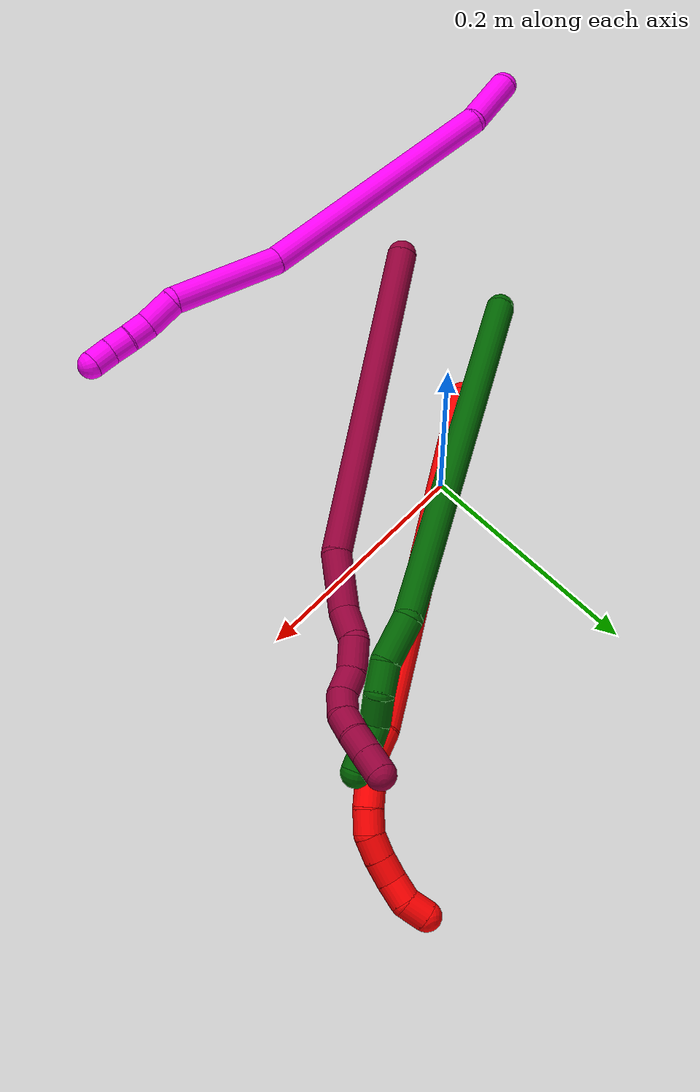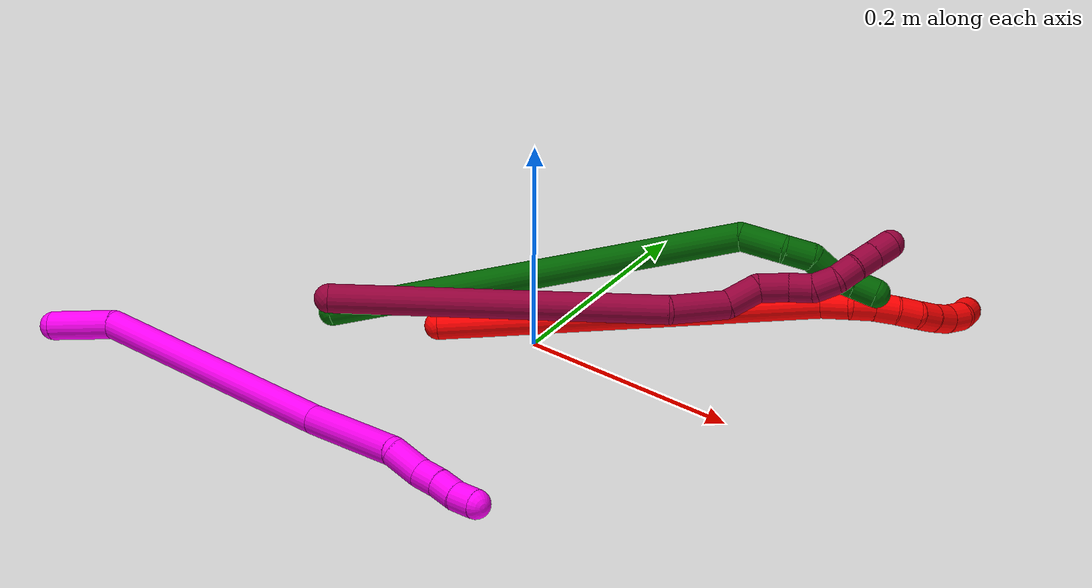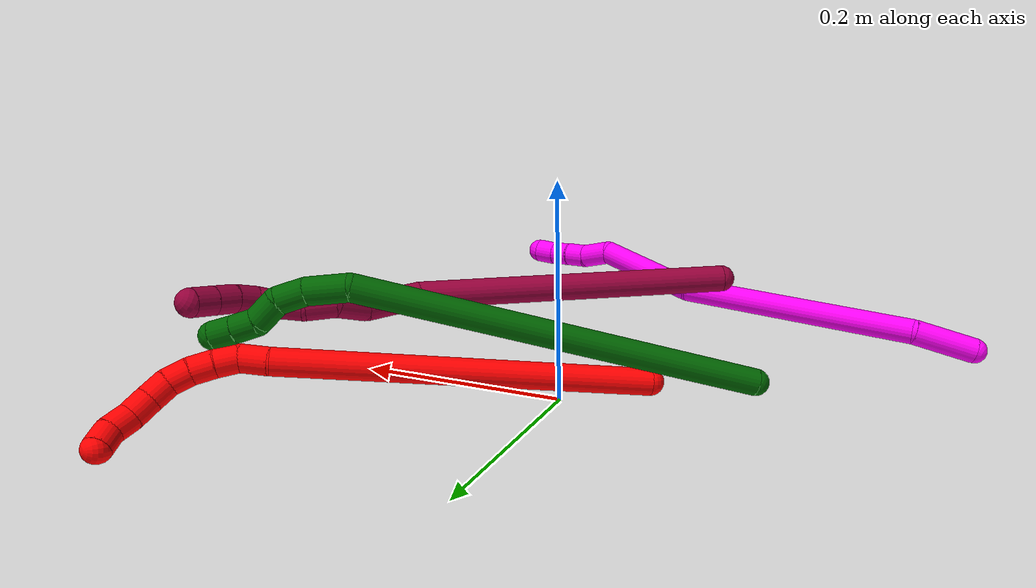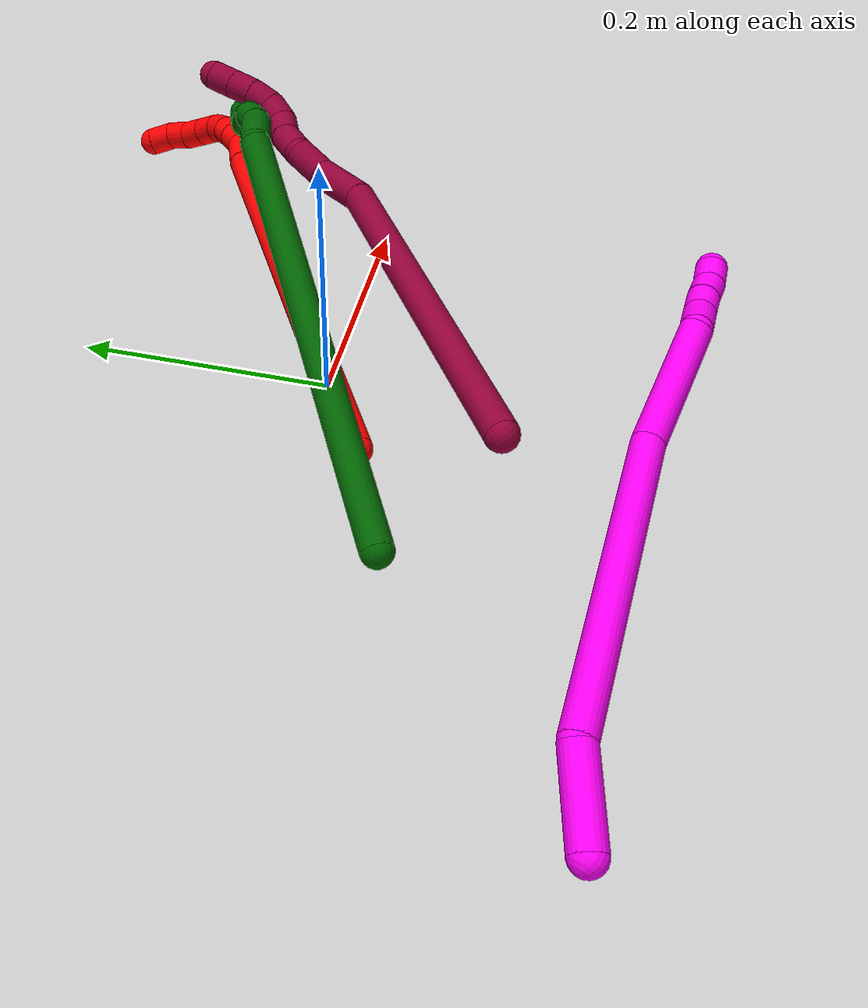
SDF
<sdf version="1.7">
 <world name="default">
  <model name="2">
   <static>0</static>
   <link name="2">
    <collision name="collision-cylinder-e_1_1_4">
     <pose>0.104867 0.002203 0.130012 -0.016941 0.678677 -0.00598</pose>
     <geometry><cylinder><radius>0.0125</radius><length>0.334096</length></cylinder></geometry>
     <surface>
      <friction><ode><mu>1.16</mu><mu2>1.16</mu2><slip1>0</slip1><slip2>0</slip2></ode></friction>
      <contact><ode><kp>1e+06</kp><kd>1</kd><max_vel>0</max_vel><min_depth>0.001</min_depth></ode></contact>
     </surface>
    </collision>
    <visual name="visual-cylinder-e_1_1_4">
     <pose>0.104867 0.002203 0.130012 -0.016941 0.678677 -0.00598</pose>
     <geometry><cylinder><radius>0.0125</radius><length>0.334096</length></cylinder></geometry>
     <material><ambient>1 0 0 1</ambient></material>
    </visual>
    <collision name="collision-cylinder-e_2_4_5">
     <pose>0.219276 0.004368 0.268332 0.004474 0.854434 0.002037</pose>
     <geometry><cylinder><radius>0.0125</radius><length>0.025305</length></cylinder></geometry>
     <surface>
      <friction><ode><mu>1.16</mu><mu2>1.16</mu2><slip1>0</slip1><slip2>0</slip2></ode></friction>
      <contact><ode><kp>1e+06</kp><kd>1</kd><max_vel>0</max_vel><min_depth>0.001</min_depth></ode></contact>
     </surface>
    </collision>
    <visual name="visual-cylinder-e_2_4_5">
     <pose>0.219276 0.004368 0.268332 0.004474 0.854434 0.002037</pose>
     <geometry><cylinder><radius>0.0125</radius><length>0.025305</length></cylinder></geometry>
     <material><ambient>1 0 0 1</ambient></material>
    </visual>
    <collision name="collision-cylinder-e_3_5_6">
     <pose>0.233929 0.007128 0.284967 -0.324086 0.527002 -0.088146</pose>
     <geometry><cylinder><radius>0.0125</radius><length>0.020326</length></cylinder></geometry>
     <surface>
      <friction><ode><mu>1.16</mu><mu2>1.16</mu2><slip1>0</slip1><slip2>0</slip2></ode></friction>
      <contact><ode><kp>1e+06</kp><kd>1</kd><max_vel>0</max_vel><min_depth>0.001</min_depth></ode></contact>
     </surface>
    </collision>
    <visual name="visual-cylinder-e_3_5_6">
     <pose>0.233929 0.007128 0.284967 -0.324086 0.527002 -0.088146</pose>
     <geometry><cylinder><radius>0.0125</radius><length>0.020326</length></cylinder></geometry>
     <material><ambient>1 0 0 1</ambient></material>
    </visual>
    <collision name="collision-cylinder-e_4_6_7">
     <pose>0.244275 0.013539 0.301026 -0.437104 0.550148 -0.125202</pose>
     <geometry><cylinder><radius>0.0125</radius><length>0.020024</length></cylinder></geometry>
     <surface>
      <friction><ode><mu>1.16</mu><mu2>1.16</mu2><slip1>0</slip1><slip2>0</slip2></ode></friction>
      <contact><ode><kp>1e+06</kp><kd>1</kd><max_vel>0</max_vel><min_depth>0.001</min_depth></ode></contact>
     </surface>
    </collision>
    <visual name="visual-cylinder-e_4_6_7">
     <pose>0.244275 0.013539 0.301026 -0.437104 0.550148 -0.125202</pose>
     <geometry><cylinder><radius>0.0125</radius><length>0.020024</length></cylinder></geometry>
     <material><ambient>1 0 0 1</ambient></material>
    </visual>
    <collision name="collision-cylinder-e_5_7_8">
     <pose>0.253482 0.022159 0.316507 -0.573736 0.406576 -0.121472</pose>
     <geometry><cylinder><radius>0.0125</radius><length>0.02009</length></cylinder></geometry>
     <surface>
      <friction><ode><mu>1.16</mu><mu2>1.16</mu2><slip1>0</slip1><slip2>0</slip2></ode></friction>
      <contact><ode><kp>1e+06</kp><kd>1</kd><max_vel>0</max_vel><min_depth>0.001</min_depth></ode></contact>
     </surface>
    </collision>
    <visual name="visual-cylinder-e_5_7_8">
     <pose>0.253482 0.022159 0.316507 -0.573736 0.406576 -0.121472</pose>
     <geometry><cylinder><radius>0.0125</radius><length>0.02009</length></cylinder></geometry>
     <material><ambient>1 0 0 1</ambient></material>
    </visual>
    <collision name="collision-cylinder-e_6_8_9">
     <pose>0.25776 0.033569 0.331964 -0.693124 0.030496 -0.011014</pose>
     <geometry><cylinder><radius>0.0125</radius><length>0.020051</length></cylinder></geometry>
     <surface>
      <friction><ode><mu>1.16</mu><mu2>1.16</mu2><slip1>0</slip1><slip2>0</slip2></ode></friction>
      <contact><ode><kp>1e+06</kp><kd>1</kd><max_vel>0</max_vel><min_depth>0.001</min_depth></ode></contact>
     </surface>
    </collision>
    <visual name="visual-cylinder-e_6_8_9">
     <pose>0.25776 0.033569 0.331964 -0.693124 0.030496 -0.011014</pose>
     <geometry><cylinder><radius>0.0125</radius><length>0.020051</length></cylinder></geometry>
     <material><ambient>1 0 0 1</ambient></material>
    </visual>
    <collision name="collision-cylinder-e_7_9_10">
     <pose>0.257367 0.046128 0.347529 -0.664629 -0.069858 0.024117</pose>
     <geometry><cylinder><radius>0.0125</radius><length>0.02001</length></cylinder></geometry>
     <surface>
      <friction><ode><mu>1.16</mu><mu2>1.16</mu2><slip1>0</slip1><slip2>0</slip2></ode></friction>
      <contact><ode><kp>1e+06</kp><kd>1</kd><max_vel>0</max_vel><min_depth>0.001</min_depth></ode></contact>
     </surface>
    </collision>
    <visual name="visual-cylinder-e_7_9_10">
     <pose>0.257367 0.046128 0.347529 -0.664629 -0.069858 0.024117</pose>
     <geometry><cylinder><radius>0.0125</radius><length>0.02001</length></cylinder></geometry>
     <material><ambient>1 0 0 1</ambient></material>
    </visual>
    <collision name="collision-cylinder-e_8_10_11">
     <pose>0.255548 0.056885 0.364213 -0.480469 -0.112155 0.027501</pose>
     <geometry><cylinder><radius>0.0125</radius><length>0.020035</length></cylinder></geometry>
     <surface>
      <friction><ode><mu>1.16</mu><mu2>1.16</mu2><slip1>0</slip1><slip2>0</slip2></ode></friction>
      <contact><ode><kp>1e+06</kp><kd>1</kd><max_vel>0</max_vel><min_depth>0.001</min_depth></ode></contact>
     </surface>
    </collision>
    <visual name="visual-cylinder-e_8_10_11">
     <pose>0.255548 0.056885 0.364213 -0.480469 -0.112155 0.027501</pose>
     <geometry><cylinder><radius>0.0125</radius><length>0.020035</length></cylinder></geometry>
     <material><ambient>1 0 0 1</ambient></material>
    </visual>
    <collision name="collision-cylinder-e_9_11_2">
     <pose>0.249348 0.066287 0.380238 -0.588279 -0.53083 0.164317</pose>
     <geometry><cylinder><radius>0.0125</radius><length>0.020063</length></cylinder></geometry>
     <surface>
      <friction><ode><mu>1.16</mu><mu2>1.16</mu2><slip1>0</slip1><slip2>0</slip2></ode></friction>
      <contact><ode><kp>1e+06</kp><kd>1</kd><max_vel>0</max_vel><min_depth>0.001</min_depth></ode></contact>
     </surface>
    </collision>
    <visual name="visual-cylinder-e_9_11_2">
     <pose>0.249348 0.066287 0.380238 -0.588279 -0.53083 0.164317</pose>
     <geometry><cylinder><radius>0.0125</radius><length>0.020063</length></cylinder></geometry>
     <material><ambient>1 0 0 1</ambient></material>
    </visual>
    <collision name="collision-sphere-2">
     <pose>0.24427 0.071088 0.387434 0 -0 0</pose>
     <geometry><sphere><radius>0.0125</radius></sphere></geometry>
     <surface>
      <friction><ode><mu>1.16</mu><mu2>1.16</mu2><slip1>0</slip1><slip2>0</slip2></ode></friction>
      <contact><ode><kp>1e+06</kp><kd>1</kd><max_vel>0</max_vel><min_depth>0.001</min_depth></ode></contact>
     </surface>
    </collision>
    <visual name="visual-sphere-2">
     <pose>0.24427 0.071088 0.387434 0 -0 0</pose>
     <geometry><sphere><radius>0.0125</radius></sphere></geometry>
     <material><ambient>1 0 0 1</ambient></material>
    </visual>
    <collision name="collision-sphere-11">
     <pose>0.254427 0.061486 0.373041 0 -0 0</pose>
     <geometry><sphere><radius>0.0125</radius></sphere></geometry>
     <surface>
      <friction><ode><mu>1.16</mu><mu2>1.16</mu2><slip1>0</slip1><slip2>0</slip2></ode></friction>
      <contact><ode><kp>1e+06</kp><kd>1</kd><max_vel>0</max_vel><min_depth>0.001</min_depth></ode></contact>
     </surface>
    </collision>
    <visual name="visual-sphere-11">
     <pose>0.254427 0.061486 0.373041 0 -0 0</pose>
     <geometry><sphere><radius>0.0125</radius></sphere></geometry>
     <material><ambient>1 0 0 1</ambient></material>
    </visual>
    <collision name="collision-sphere-10">
     <pose>0.256669 0.052284 0.355385 0 -0 0</pose>
     <geometry><sphere><radius>0.0125</radius></sphere></geometry>
     <surface>
      <friction><ode><mu>1.16</mu><mu2>1.16</mu2><slip1>0</slip1><slip2>0</slip2></ode></friction>
      <contact><ode><kp>1e+06</kp><kd>1</kd><max_vel>0</max_vel><min_depth>0.001</min_depth></ode></contact>
     </surface>
    </collision>
    <visual name="visual-sphere-10">
     <pose>0.256669 0.052284 0.355385 0 -0 0</pose>
     <geometry><sphere><radius>0.0125</radius></sphere></geometry>
     <material><ambient>1 0 0 1</ambient></material>
    </visual>
    <collision name="collision-sphere-9">
     <pose>0.258066 0.039972 0.339673 0 -0 0</pose>
     <geometry><sphere><radius>0.0125</radius></sphere></geometry>
     <surface>
      <friction><ode><mu>1.16</mu><mu2>1.16</mu2><slip1>0</slip1><slip2>0</slip2></ode></friction>
      <contact><ode><kp>1e+06</kp><kd>1</kd><max_vel>0</max_vel><min_depth>0.001</min_depth></ode></contact>
     </surface>
    </collision>
    <visual name="visual-sphere-9">
     <pose>0.258066 0.039972 0.339673 0 -0 0</pose>
     <geometry><sphere><radius>0.0125</radius></sphere></geometry>
     <material><ambient>1 0 0 1</ambient></material>
    </visual>
    <collision name="collision-sphere-4">
     <pose>0.209733 0.004406 0.260024 0 -0 0</pose>
     <geometry><sphere><radius>0.0125</radius></sphere></geometry>
     <surface>
      <friction><ode><mu>1.16</mu><mu2>1.16</mu2><slip1>0</slip1><slip2>0</slip2></ode></friction>
      <contact><ode><kp>1e+06</kp><kd>1</kd><max_vel>0</max_vel><min_depth>0.001</min_depth></ode></contact>
     </surface>
    </collision>
    <visual name="visual-sphere-4">
     <pose>0.209733 0.004406 0.260024 0 -0 0</pose>
     <geometry><sphere><radius>0.0125</radius></sphere></geometry>
     <material><ambient>1 0 0 1</ambient></material>
    </visual>
    <collision name="collision-sphere-1">
     <geometry><sphere><radius>0.0125</radius></sphere></geometry>
     <surface>
      <friction><ode><mu>1.16</mu><mu2>1.16</mu2><slip1>0</slip1><slip2>0</slip2></ode></friction>
      <contact><ode><kp>1e+06</kp><kd>1</kd><max_vel>0</max_vel><min_depth>0.001</min_depth></ode></contact>
     </surface>
    </collision>
    <visual name="visual-sphere-1">
     <geometry><sphere><radius>0.0125</radius></sphere></geometry>
     <material><ambient>1 0 0 1</ambient></material>
    </visual>
    <collision name="collision-sphere-8">
     <pose>0.257454 0.027167 0.324255 0 -0 0</pose>
     <geometry><sphere><radius>0.0125</radius></sphere></geometry>
     <surface>
      <friction><ode><mu>1.16</mu><mu2>1.16</mu2><slip1>0</slip1><slip2>0</slip2></ode></friction>
      <contact><ode><kp>1e+06</kp><kd>1</kd><max_vel>0</max_vel><min_depth>0.001</min_depth></ode></contact>
     </surface>
    </collision>
    <visual name="visual-sphere-8">
     <pose>0.257454 0.027167 0.324255 0 -0 0</pose>
     <geometry><sphere><radius>0.0125</radius></sphere></geometry>
     <material><ambient>1 0 0 1</ambient></material>
    </visual>
    <collision name="collision-sphere-5">
     <pose>0.228818 0.004331 0.27664 0 -0 0</pose>
     <geometry><sphere><radius>0.0125</radius></sphere></geometry>
     <surface>
      <friction><ode><mu>1.16</mu><mu2>1.16</mu2><slip1>0</slip1><slip2>0</slip2></ode></friction>
      <contact><ode><kp>1e+06</kp><kd>1</kd><max_vel>0</max_vel><min_depth>0.001</min_depth></ode></contact>
     </surface>
    </collision>
    <visual name="visual-sphere-5">
     <pose>0.228818 0.004331 0.27664 0 -0 0</pose>
     <geometry><sphere><radius>0.0125</radius></sphere></geometry>
     <material><ambient>1 0 0 1</ambient></material>
    </visual>
    <collision name="collision-sphere-6">
     <pose>0.239041 0.009926 0.293293 0 -0 0</pose>
     <geometry><sphere><radius>0.0125</radius></sphere></geometry>
     <surface>
      <friction><ode><mu>1.16</mu><mu2>1.16</mu2><slip1>0</slip1><slip2>0</slip2></ode></friction>
      <contact><ode><kp>1e+06</kp><kd>1</kd><max_vel>0</max_vel><min_depth>0.001</min_depth></ode></contact>
     </surface>
    </collision>
    <visual name="visual-sphere-6">
     <pose>0.239041 0.009926 0.293293 0 -0 0</pose>
     <geometry><sphere><radius>0.0125</radius></sphere></geometry>
     <material><ambient>1 0 0 1</ambient></material>
    </visual>
    <collision name="collision-sphere-7">
     <pose>0.24951 0.017151 0.308758 0 -0 0</pose>
     <geometry><sphere><radius>0.0125</radius></sphere></geometry>
     <surface>
      <friction><ode><mu>1.16</mu><mu2>1.16</mu2><slip1>0</slip1><slip2>0</slip2></ode></friction>
      <contact><ode><kp>1e+06</kp><kd>1</kd><max_vel>0</max_vel><min_depth>0.001</min_depth></ode></contact>
     </surface>
    </collision>
    <visual name="visual-sphere-7">
     <pose>0.24951 0.017151 0.308758 0 -0 0</pose>
     <geometry><sphere><radius>0.0125</radius></sphere></geometry>
     <material><ambient>1 0 0 1</ambient></material>
    </visual>
    <inertial>
     <pose>0.151528 0.011547 0.193883 0 -0 0</pose>
     <mass>0.5</mass>
     <inertia>
      <ixx>0.002444</ixx>
      <ixy>0</ixy>
      <ixz>0</ixz>
      <iyy>0.003122</iyy>
      <iyz>0</iyz>
      <izz>-0.001978</izz>
     </inertia>
    </inertial>
   </link>
   <pose>-0.072448 -0.041795 0.012843 -1.37816 0.020181 -0.32964</pose>
  </model>
  <model name="6">
   <static>0</static>
   <link name="6">
    <collision name="collision-cylinder-e_1_1_4">
     <pose>0.166913 0.004781 -0.080174 -3.08203 1.12231 -3.04687</pose>
     <geometry><cylinder><radius>0.0125</radius><length>0.370463</length></cylinder></geometry>
     <surface>
      <friction><ode><mu>1.16</mu><mu2>1.16</mu2><slip1>0</slip1><slip2>0</slip2></ode></friction>
      <contact><ode><kp>1e+06</kp><kd>1</kd><max_vel>0</max_vel><min_depth>0.001</min_depth></ode></contact>
     </surface>
    </collision>
    <visual name="visual-cylinder-e_1_1_4">
     <pose>0.166913 0.004781 -0.080174 -3.08203 1.12231 -3.04687</pose>
     <geometry><cylinder><radius>0.0125</radius><length>0.370463</length></cylinder></geometry>
     <material><ambient>0 0.392157 0.003922 1</ambient></material>
    </visual>
    <collision name="collision-cylinder-e_2_4_5">
     <pose>0.346425 0.005501 -0.174568 2.86341 0.705597 2.41492</pose>
     <geometry><cylinder><radius>0.0125</radius><length>0.038858</length></cylinder></geometry>
     <surface>
      <friction><ode><mu>1.16</mu><mu2>1.16</mu2><slip1>0</slip1><slip2>0</slip2></ode></friction>
      <contact><ode><kp>1e+06</kp><kd>1</kd><max_vel>0</max_vel><min_depth>0.001</min_depth></ode></contact>
     </surface>
    </collision>
    <visual name="visual-cylinder-e_2_4_5">
     <pose>0.346425 0.005501 -0.174568 2.86341 0.705597 2.41492</pose>
     <geometry><cylinder><radius>0.0125</radius><length>0.038858</length></cylinder></geometry>
     <material><ambient>0 0.392157 0.003922 1</ambient></material>
    </visual>
    <collision name="collision-cylinder-e_3_5_6">
     <pose>0.36562 0.002034 -0.199529 -3.08631 0.550003 -2.94622</pose>
     <geometry><cylinder><radius>0.0125</radius><length>0.025234</length></cylinder></geometry>
     <surface>
      <friction><ode><mu>1.16</mu><mu2>1.16</mu2><slip1>0</slip1><slip2>0</slip2></ode></friction>
      <contact><ode><kp>1e+06</kp><kd>1</kd><max_vel>0</max_vel><min_depth>0.001</min_depth></ode></contact>
     </surface>
    </collision>
    <visual name="visual-cylinder-e_3_5_6">
     <pose>0.36562 0.002034 -0.199529 -3.08631 0.550003 -2.94622</pose>
     <geometry><cylinder><radius>0.0125</radius><length>0.025234</length></cylinder></geometry>
     <material><ambient>0 0.392157 0.003922 1</ambient></material>
    </visual>
    <collision name="collision-cylinder-e_4_6_7">
     <pose>0.372837 0.003005 -0.222636 -3.11112 0.050257 -2.05165</pose>
     <geometry><cylinder><radius>0.0125</radius><length>0.024778</length></cylinder></geometry>
     <surface>
      <friction><ode><mu>1.16</mu><mu2>1.16</mu2><slip1>0</slip1><slip2>0</slip2></ode></friction>
      <contact><ode><kp>1e+06</kp><kd>1</kd><max_vel>0</max_vel><min_depth>0.001</min_depth></ode></contact>
     </surface>
    </collision>
    <visual name="visual-cylinder-e_4_6_7">
     <pose>0.372837 0.003005 -0.222636 -3.11112 0.050257 -2.05165</pose>
     <geometry><cylinder><radius>0.0125</radius><length>0.024778</length></cylinder></geometry>
     <material><ambient>0 0.392157 0.003922 1</ambient></material>
    </visual>
    <collision name="collision-cylinder-e_5_7_8">
     <pose>0.378504 0.002244 -0.243819 3.01315 0.516236 2.66374</pose>
     <geometry><cylinder><radius>0.0125</radius><length>0.02044</length></cylinder></geometry>
     <surface>
      <friction><ode><mu>1.16</mu><mu2>1.16</mu2><slip1>0</slip1><slip2>0</slip2></ode></friction>
      <contact><ode><kp>1e+06</kp><kd>1</kd><max_vel>0</max_vel><min_depth>0.001</min_depth></ode></contact>
     </surface>
    </collision>
    <visual name="visual-cylinder-e_5_7_8">
     <pose>0.378504 0.002244 -0.243819 3.01315 0.516236 2.66374</pose>
     <geometry><cylinder><radius>0.0125</radius><length>0.02044</length></cylinder></geometry>
     <material><ambient>0 0.392157 0.003922 1</ambient></material>
    </visual>
    <collision name="collision-cylinder-e_6_8_2">
     <pose>0.388768 -0.000403 -0.261165 2.96656 0.54222 2.53006</pose>
     <geometry><cylinder><radius>0.0125</radius><length>0.020228</length></cylinder></geometry>
     <surface>
      <friction><ode><mu>1.16</mu><mu2>1.16</mu2><slip1>0</slip1><slip2>0</slip2></ode></friction>
      <contact><ode><kp>1e+06</kp><kd>1</kd><max_vel>0</max_vel><min_depth>0.001</min_depth></ode></contact>
     </surface>
    </collision>
    <visual name="visual-cylinder-e_6_8_2">
     <pose>0.388768 -0.000403 -0.261165 2.96656 0.54222 2.53006</pose>
     <geometry><cylinder><radius>0.0125</radius><length>0.020228</length></cylinder></geometry>
     <material><ambient>0 0.392157 0.003922 1</ambient></material>
    </visual>
    <collision name="collision-sphere-2">
     <pose>0.393987 -0.001912 -0.269696 0 -0 0</pose>
     <geometry><sphere><radius>0.0125</radius></sphere></geometry>
     <surface>
      <friction><ode><mu>1.16</mu><mu2>1.16</mu2><slip1>0</slip1><slip2>0</slip2></ode></friction>
      <contact><ode><kp>1e+06</kp><kd>1</kd><max_vel>0</max_vel><min_depth>0.001</min_depth></ode></contact>
     </surface>
    </collision>
    <visual name="visual-sphere-2">
     <pose>0.393987 -0.001912 -0.269696 0 -0 0</pose>
     <geometry><sphere><radius>0.0125</radius></sphere></geometry>
     <material><ambient>0 0.392157 0.003922 1</ambient></material>
    </visual>
    <collision name="collision-sphere-4">
     <pose>0.333826 0.009563 -0.160347 0 -0 0</pose>
     <geometry><sphere><radius>0.0125</radius></sphere></geometry>
     <surface>
      <friction><ode><mu>1.16</mu><mu2>1.16</mu2><slip1>0</slip1><slip2>0</slip2></ode></friction>
      <contact><ode><kp>1e+06</kp><kd>1</kd><max_vel>0</max_vel><min_depth>0.001</min_depth></ode></contact>
     </surface>
    </collision>
    <visual name="visual-sphere-4">
     <pose>0.333826 0.009563 -0.160347 0 -0 0</pose>
     <geometry><sphere><radius>0.0125</radius></sphere></geometry>
     <material><ambient>0 0.392157 0.003922 1</ambient></material>
    </visual>
    <collision name="collision-sphere-1">
     <geometry><sphere><radius>0.0125</radius></sphere></geometry>
     <surface>
      <friction><ode><mu>1.16</mu><mu2>1.16</mu2><slip1>0</slip1><slip2>0</slip2></ode></friction>
      <contact><ode><kp>1e+06</kp><kd>1</kd><max_vel>0</max_vel><min_depth>0.001</min_depth></ode></contact>
     </surface>
    </collision>
    <visual name="visual-sphere-1">
     <geometry><sphere><radius>0.0125</radius></sphere></geometry>
     <material><ambient>0 0.392157 0.003922 1</ambient></material>
    </visual>
    <collision name="collision-sphere-8">
     <pose>0.383549 0.001105 -0.252634 0 -0 0</pose>
     <geometry><sphere><radius>0.0125</radius></sphere></geometry>
     <surface>
      <friction><ode><mu>1.16</mu><mu2>1.16</mu2><slip1>0</slip1><slip2>0</slip2></ode></friction>
      <contact><ode><kp>1e+06</kp><kd>1</kd><max_vel>0</max_vel><min_depth>0.001</min_depth></ode></contact>
     </surface>
    </collision>
    <visual name="visual-sphere-8">
     <pose>0.383549 0.001105 -0.252634 0 -0 0</pose>
     <geometry><sphere><radius>0.0125</radius></sphere></geometry>
     <material><ambient>0 0.392157 0.003922 1</ambient></material>
    </visual>
    <collision name="collision-sphere-5">
     <pose>0.359025 0.00144 -0.18879 0 -0 0</pose>
     <geometry><sphere><radius>0.0125</radius></sphere></geometry>
     <surface>
      <friction><ode><mu>1.16</mu><mu2>1.16</mu2><slip1>0</slip1><slip2>0</slip2></ode></friction>
      <contact><ode><kp>1e+06</kp><kd>1</kd><max_vel>0</max_vel><min_depth>0.001</min_depth></ode></contact>
     </surface>
    </collision>
    <visual name="visual-sphere-5">
     <pose>0.359025 0.00144 -0.18879 0 -0 0</pose>
     <geometry><sphere><radius>0.0125</radius></sphere></geometry>
     <material><ambient>0 0.392157 0.003922 1</ambient></material>
    </visual>
    <collision name="collision-sphere-6">
     <pose>0.372214 0.002628 -0.210269 0 -0 0</pose>
     <geometry><sphere><radius>0.0125</radius></sphere></geometry>
     <surface>
      <friction><ode><mu>1.16</mu><mu2>1.16</mu2><slip1>0</slip1><slip2>0</slip2></ode></friction>
      <contact><ode><kp>1e+06</kp><kd>1</kd><max_vel>0</max_vel><min_depth>0.001</min_depth></ode></contact>
     </surface>
    </collision>
    <visual name="visual-sphere-6">
     <pose>0.372214 0.002628 -0.210269 0 -0 0</pose>
     <geometry><sphere><radius>0.0125</radius></sphere></geometry>
     <material><ambient>0 0.392157 0.003922 1</ambient></material>
    </visual>
    <collision name="collision-sphere-7">
     <pose>0.373459 0.003382 -0.235004 0 -0 0</pose>
     <geometry><sphere><radius>0.0125</radius></sphere></geometry>
     <surface>
      <friction><ode><mu>1.16</mu><mu2>1.16</mu2><slip1>0</slip1><slip2>0</slip2></ode></friction>
      <contact><ode><kp>1e+06</kp><kd>1</kd><max_vel>0</max_vel><min_depth>0.001</min_depth></ode></contact>
     </surface>
    </collision>
    <visual name="visual-sphere-7">
     <pose>0.373459 0.003382 -0.235004 0 -0 0</pose>
     <geometry><sphere><radius>0.0125</radius></sphere></geometry>
     <material><ambient>0 0.392157 0.003922 1</ambient></material>
    </visual>
    <inertial>
     <pose>0.218722 0.004297 -0.114605 0 -0 0</pose>
     <mass>0.5</mass>
     <inertia>
      <ixx>-0.001985</ixx>
      <ixy>0</ixy>
      <ixz>0</ixz>
      <iyy>0.004085</iyy>
      <iyz>0</iyz>
      <izz>-0.003967</izz>
     </inertia>
    </inertial>
   </link>
   <pose>-0.161185 -0.078946 0.012069 0.047444 -0.733902 0.471784</pose>
  </model>
  <model name="8">
   <static>0</static>
   <link name="8">
    <collision name="collision-cylinder-e_1_1_4">
     <pose>0.097788 -0.017928 0.10494 0.169209 0.742962 0.066052</pose>
     <geometry><cylinder><radius>0.0125</radius><length>0.289112</length></cylinder></geometry>
     <surface>
      <friction><ode><mu>1.16</mu><mu2>1.16</mu2><slip1>0</slip1><slip2>0</slip2></ode></friction>
      <contact><ode><kp>1e+06</kp><kd>1</kd><max_vel>0</max_vel><min_depth>0.001</min_depth></ode></contact>
     </surface>
    </collision>
    <visual name="visual-cylinder-e_1_1_4">
     <pose>0.097788 -0.017928 0.10494 0.169209 0.742962 0.066052</pose>
     <geometry><cylinder><radius>0.0125</radius><length>0.289112</length></cylinder></geometry>
     <material><ambient>0.584314 0 0.227451 1</ambient></material>
    </visual>
    <collision name="collision-cylinder-e_2_4_5">
     <pose>0.211441 -0.030844 0.229348 -0.252019 0.668129 -0.087878</pose>
     <geometry><cylinder><radius>0.0125</radius><length>0.051217</length></cylinder></geometry>
     <surface>
      <friction><ode><mu>1.16</mu><mu2>1.16</mu2><slip1>0</slip1><slip2>0</slip2></ode></friction>
      <contact><ode><kp>1e+06</kp><kd>1</kd><max_vel>0</max_vel><min_depth>0.001</min_depth></ode></contact>
     </surface>
    </collision>
    <visual name="visual-cylinder-e_2_4_5">
     <pose>0.211441 -0.030844 0.229348 -0.252019 0.668129 -0.087878</pose>
     <geometry><cylinder><radius>0.0125</radius><length>0.051217</length></cylinder></geometry>
     <material><ambient>0.584314 0 0.227451 1</ambient></material>
    </visual>
    <collision name="collision-cylinder-e_3_5_6">
     <pose>0.231167 -0.023401 0.262987 -0.169847 0.262343 -0.022461</pose>
     <geometry><cylinder><radius>0.0125</radius><length>0.029777</length></cylinder></geometry>
     <surface>
      <friction><ode><mu>1.16</mu><mu2>1.16</mu2><slip1>0</slip1><slip2>0</slip2></ode></friction>
      <contact><ode><kp>1e+06</kp><kd>1</kd><max_vel>0</max_vel><min_depth>0.001</min_depth></ode></contact>
     </surface>
    </collision>
    <visual name="visual-cylinder-e_3_5_6">
     <pose>0.231167 -0.023401 0.262987 -0.169847 0.262343 -0.022461</pose>
     <geometry><cylinder><radius>0.0125</radius><length>0.029777</length></cylinder></geometry>
     <material><ambient>0.584314 0 0.227451 1</ambient></material>
    </visual>
    <collision name="collision-cylinder-e_4_6_7">
     <pose>0.243884 -0.020978 0.287385 0.000734 0.713725 0.000274</pose>
     <geometry><cylinder><radius>0.0125</radius><length>0.027056</length></cylinder></geometry>
     <surface>
      <friction><ode><mu>1.16</mu><mu2>1.16</mu2><slip1>0</slip1><slip2>0</slip2></ode></friction>
      <contact><ode><kp>1e+06</kp><kd>1</kd><max_vel>0</max_vel><min_depth>0.001</min_depth></ode></contact>
     </surface>
    </collision>
    <visual name="visual-cylinder-e_4_6_7">
     <pose>0.243884 -0.020978 0.287385 0.000734 0.713725 0.000274</pose>
     <geometry><cylinder><radius>0.0125</radius><length>0.027056</length></cylinder></geometry>
     <material><ambient>0.584314 0 0.227451 1</ambient></material>
    </visual>
    <collision name="collision-cylinder-e_5_7_8">
     <pose>0.25944 -0.024371 0.30529 0.415278 0.673712 0.147291</pose>
     <geometry><cylinder><radius>0.0125</radius><length>0.021477</length></cylinder></geometry>
     <surface>
      <friction><ode><mu>1.16</mu><mu2>1.16</mu2><slip1>0</slip1><slip2>0</slip2></ode></friction>
      <contact><ode><kp>1e+06</kp><kd>1</kd><max_vel>0</max_vel><min_depth>0.001</min_depth></ode></contact>
     </surface>
    </collision>
    <visual name="visual-cylinder-e_5_7_8">
     <pose>0.25944 -0.024371 0.30529 0.415278 0.673712 0.147291</pose>
     <geometry><cylinder><radius>0.0125</radius><length>0.021477</length></cylinder></geometry>
     <material><ambient>0.584314 0 0.227451 1</ambient></material>
    </visual>
    <collision name="collision-cylinder-e_6_8_9">
     <pose>0.269774 -0.028165 0.322597 0.042397 0.360635 0.00773</pose>
     <geometry><cylinder><radius>0.0125</radius><length>0.020597</length></cylinder></geometry>
     <surface>
      <friction><ode><mu>1.16</mu><mu2>1.16</mu2><slip1>0</slip1><slip2>0</slip2></ode></friction>
      <contact><ode><kp>1e+06</kp><kd>1</kd><max_vel>0</max_vel><min_depth>0.001</min_depth></ode></contact>
     </surface>
    </collision>
    <visual name="visual-cylinder-e_6_8_9">
     <pose>0.269774 -0.028165 0.322597 0.042397 0.360635 0.00773</pose>
     <geometry><cylinder><radius>0.0125</radius><length>0.020597</length></cylinder></geometry>
     <material><ambient>0.584314 0 0.227451 1</ambient></material>
    </visual>
    <collision name="collision-cylinder-e_7_9_10">
     <pose>0.275207 -0.025497 0.341668 -0.314924 0.179155 -0.02852</pose>
     <geometry><cylinder><radius>0.0125</radius><length>0.020189</length></cylinder></geometry>
     <surface>
      <friction><ode><mu>1.16</mu><mu2>1.16</mu2><slip1>0</slip1><slip2>0</slip2></ode></friction>
      <contact><ode><kp>1e+06</kp><kd>1</kd><max_vel>0</max_vel><min_depth>0.001</min_depth></ode></contact>
     </surface>
    </collision>
    <visual name="visual-cylinder-e_7_9_10">
     <pose>0.275207 -0.025497 0.341668 -0.314924 0.179155 -0.02852</pose>
     <geometry><cylinder><radius>0.0125</radius><length>0.020189</length></cylinder></geometry>
     <material><ambient>0.584314 0 0.227451 1</ambient></material>
    </visual>
    <collision name="collision-cylinder-e_8_10_11">
     <pose>0.279361 -0.018027 0.359858 -0.465555 0.23623 -0.056251</pose>
     <geometry><cylinder><radius>0.0125</radius><length>0.020134</length></cylinder></geometry>
     <surface>
      <friction><ode><mu>1.16</mu><mu2>1.16</mu2><slip1>0</slip1><slip2>0</slip2></ode></friction>
      <contact><ode><kp>1e+06</kp><kd>1</kd><max_vel>0</max_vel><min_depth>0.001</min_depth></ode></contact>
     </surface>
    </collision>
    <visual name="visual-cylinder-e_8_10_11">
     <pose>0.279361 -0.018027 0.359858 -0.465555 0.23623 -0.056251</pose>
     <geometry><cylinder><radius>0.0125</radius><length>0.020134</length></cylinder></geometry>
     <material><ambient>0.584314 0 0.227451 1</ambient></material>
    </visual>
    <collision name="collision-cylinder-e_9_11_2">
     <pose>0.284103 -0.009162 0.377481 -0.466588 0.235546 -0.056216</pose>
     <geometry><cylinder><radius>0.0125</radius><length>0.020442</length></cylinder></geometry>
     <surface>
      <friction><ode><mu>1.16</mu><mu2>1.16</mu2><slip1>0</slip1><slip2>0</slip2></ode></friction>
      <contact><ode><kp>1e+06</kp><kd>1</kd><max_vel>0</max_vel><min_depth>0.001</min_depth></ode></contact>
     </surface>
    </collision>
    <visual name="visual-cylinder-e_9_11_2">
     <pose>0.284103 -0.009162 0.377481 -0.466588 0.235546 -0.056216</pose>
     <geometry><cylinder><radius>0.0125</radius><length>0.020442</length></cylinder></geometry>
     <material><ambient>0.584314 0 0.227451 1</ambient></material>
    </visual>
    <collision name="collision-sphere-2">
     <pose>0.286488 -0.004691 0.386357 0 -0 0</pose>
     <geometry><sphere><radius>0.0125</radius></sphere></geometry>
     <surface>
      <friction><ode><mu>1.16</mu><mu2>1.16</mu2><slip1>0</slip1><slip2>0</slip2></ode></friction>
      <contact><ode><kp>1e+06</kp><kd>1</kd><max_vel>0</max_vel><min_depth>0.001</min_depth></ode></contact>
     </surface>
    </collision>
    <visual name="visual-sphere-2">
     <pose>0.286488 -0.004691 0.386357 0 -0 0</pose>
     <geometry><sphere><radius>0.0125</radius></sphere></geometry>
     <material><ambient>0.584314 0 0.227451 1</ambient></material>
    </visual>
    <collision name="collision-sphere-11">
     <pose>0.281717 -0.013633 0.368604 0 -0 0</pose>
     <geometry><sphere><radius>0.0125</radius></sphere></geometry>
     <surface>
      <friction><ode><mu>1.16</mu><mu2>1.16</mu2><slip1>0</slip1><slip2>0</slip2></ode></friction>
      <contact><ode><kp>1e+06</kp><kd>1</kd><max_vel>0</max_vel><min_depth>0.001</min_depth></ode></contact>
     </surface>
    </collision>
    <visual name="visual-sphere-11">
     <pose>0.281717 -0.013633 0.368604 0 -0 0</pose>
     <geometry><sphere><radius>0.0125</radius></sphere></geometry>
     <material><ambient>0.584314 0 0.227451 1</ambient></material>
    </visual>
    <collision name="collision-sphere-10">
     <pose>0.277005 -0.02242 0.351113 0 -0 0</pose>
     <geometry><sphere><radius>0.0125</radius></sphere></geometry>
     <surface>
      <friction><ode><mu>1.16</mu><mu2>1.16</mu2><slip1>0</slip1><slip2>0</slip2></ode></friction>
      <contact><ode><kp>1e+06</kp><kd>1</kd><max_vel>0</max_vel><min_depth>0.001</min_depth></ode></contact>
     </surface>
    </collision>
    <visual name="visual-sphere-10">
     <pose>0.277005 -0.02242 0.351113 0 -0 0</pose>
     <geometry><sphere><radius>0.0125</radius></sphere></geometry>
     <material><ambient>0.584314 0 0.227451 1</ambient></material>
    </visual>
    <collision name="collision-sphere-9">
     <pose>0.273408 -0.028574 0.332224 0 -0 0</pose>
     <geometry><sphere><radius>0.0125</radius></sphere></geometry>
     <surface>
      <friction><ode><mu>1.16</mu><mu2>1.16</mu2><slip1>0</slip1><slip2>0</slip2></ode></friction>
      <contact><ode><kp>1e+06</kp><kd>1</kd><max_vel>0</max_vel><min_depth>0.001</min_depth></ode></contact>
     </surface>
    </collision>
    <visual name="visual-sphere-9">
     <pose>0.273408 -0.028574 0.332224 0 -0 0</pose>
     <geometry><sphere><radius>0.0125</radius></sphere></geometry>
     <material><ambient>0.584314 0 0.227451 1</ambient></material>
    </visual>
    <collision name="collision-sphere-4">
     <pose>0.195576 -0.035857 0.209881 0 -0 0</pose>
     <geometry><sphere><radius>0.0125</radius></sphere></geometry>
     <surface>
      <friction><ode><mu>1.16</mu><mu2>1.16</mu2><slip1>0</slip1><slip2>0</slip2></ode></friction>
      <contact><ode><kp>1e+06</kp><kd>1</kd><max_vel>0</max_vel><min_depth>0.001</min_depth></ode></contact>
     </surface>
    </collision>
    <visual name="visual-sphere-4">
     <pose>0.195576 -0.035857 0.209881 0 -0 0</pose>
     <geometry><sphere><radius>0.0125</radius></sphere></geometry>
     <material><ambient>0.584314 0 0.227451 1</ambient></material>
    </visual>
    <collision name="collision-sphere-1">
     <geometry><sphere><radius>0.0125</radius></sphere></geometry>
     <surface>
      <friction><ode><mu>1.16</mu><mu2>1.16</mu2><slip1>0</slip1><slip2>0</slip2></ode></friction>
      <contact><ode><kp>1e+06</kp><kd>1</kd><max_vel>0</max_vel><min_depth>0.001</min_depth></ode></contact>
     </surface>
    </collision>
    <visual name="visual-sphere-1">
     <geometry><sphere><radius>0.0125</radius></sphere></geometry>
     <material><ambient>0.584314 0 0.227451 1</ambient></material>
    </visual>
    <collision name="collision-sphere-8">
     <pose>0.26614 -0.027757 0.312969 0 -0 0</pose>
     <geometry><sphere><radius>0.0125</radius></sphere></geometry>
     <surface>
      <friction><ode><mu>1.16</mu><mu2>1.16</mu2><slip1>0</slip1><slip2>0</slip2></ode></friction>
      <contact><ode><kp>1e+06</kp><kd>1</kd><max_vel>0</max_vel><min_depth>0.001</min_depth></ode></contact>
     </surface>
    </collision>
    <visual name="visual-sphere-8">
     <pose>0.26614 -0.027757 0.312969 0 -0 0</pose>
     <geometry><sphere><radius>0.0125</radius></sphere></geometry>
     <material><ambient>0.584314 0 0.227451 1</ambient></material>
    </visual>
    <collision name="collision-sphere-5">
     <pose>0.227306 -0.025831 0.248815 0 -0 0</pose>
     <geometry><sphere><radius>0.0125</radius></sphere></geometry>
     <surface>
      <friction><ode><mu>1.16</mu><mu2>1.16</mu2><slip1>0</slip1><slip2>0</slip2></ode></friction>
      <contact><ode><kp>1e+06</kp><kd>1</kd><max_vel>0</max_vel><min_depth>0.001</min_depth></ode></contact>
     </surface>
    </collision>
    <visual name="visual-sphere-5">
     <pose>0.227306 -0.025831 0.248815 0 -0 0</pose>
     <geometry><sphere><radius>0.0125</radius></sphere></geometry>
     <material><ambient>0.584314 0 0.227451 1</ambient></material>
    </visual>
    <collision name="collision-sphere-6">
     <pose>0.235028 -0.02097 0.277159 0 -0 0</pose>
     <geometry><sphere><radius>0.0125</radius></sphere></geometry>
     <surface>
      <friction><ode><mu>1.16</mu><mu2>1.16</mu2><slip1>0</slip1><slip2>0</slip2></ode></friction>
      <contact><ode><kp>1e+06</kp><kd>1</kd><max_vel>0</max_vel><min_depth>0.001</min_depth></ode></contact>
     </surface>
    </collision>
    <visual name="visual-sphere-6">
     <pose>0.235028 -0.02097 0.277159 0 -0 0</pose>
     <geometry><sphere><radius>0.0125</radius></sphere></geometry>
     <material><ambient>0.584314 0 0.227451 1</ambient></material>
    </visual>
    <collision name="collision-sphere-7">
     <pose>0.25274 -0.020985 0.297611 0 -0 0</pose>
     <geometry><sphere><radius>0.0125</radius></sphere></geometry>
     <surface>
      <friction><ode><mu>1.16</mu><mu2>1.16</mu2><slip1>0</slip1><slip2>0</slip2></ode></friction>
      <contact><ode><kp>1e+06</kp><kd>1</kd><max_vel>0</max_vel><min_depth>0.001</min_depth></ode></contact>
     </surface>
    </collision>
    <visual name="visual-sphere-7">
     <pose>0.25274 -0.020985 0.297611 0 -0 0</pose>
     <geometry><sphere><radius>0.0125</radius></sphere></geometry>
     <material><ambient>0.584314 0 0.227451 1</ambient></material>
    </visual>
    <inertial>
     <pose>0.1614 -0.020392 0.185507 0 -0 0</pose>
     <mass>0.5</mass>
     <inertia>
      <ixx>0.001631</ixx>
      <ixy>0</ixy>
      <ixz>0</ixz>
      <iyy>0.00213</iyy>
      <iyz>0</iyz>
      <izz>-0.001106</izz>
     </inertia>
    </inertial>
   </link>
   <pose>-0.106825 -0.149503 0.085693 -0.607196 0.778412 0.258442</pose>
  </model>
  <model name="10">
   <static>0</static>
   <link name="10">
    <collision name="collision-cylinder-e_1_1_4">
     <pose>0.004902 -0.015775 0.026257 0.541001 0.158699 0.044092</pose>
     <geometry><cylinder><radius>0.0125</radius><length>0.062042</length></cylinder></geometry>
     <surface>
      <friction><ode><mu>1.16</mu><mu2>1.16</mu2><slip1>0</slip1><slip2>0</slip2></ode></friction>
      <contact><ode><kp>1e+06</kp><kd>1</kd><max_vel>0</max_vel><min_depth>0.001</min_depth></ode></contact>
     </surface>
    </collision>
    <visual name="visual-cylinder-e_1_1_4">
     <pose>0.004902 -0.015775 0.026257 0.541001 0.158699 0.044092</pose>
     <geometry><cylinder><radius>0.0125</radius><length>0.062042</length></cylinder></geometry>
     <material><ambient>1 0 0.964706 1</ambient></material>
    </visual>
    <collision name="collision-cylinder-e_2_4_5">
     <pose>-0.006383 -0.064554 0.166771 0.281203 -0.135286 -0.019176</pose>
     <geometry><cylinder><radius>0.0125</radius><length>0.24005</length></cylinder></geometry>
     <surface>
      <friction><ode><mu>1.16</mu><mu2>1.16</mu2><slip1>0</slip1><slip2>0</slip2></ode></friction>
      <contact><ode><kp>1e+06</kp><kd>1</kd><max_vel>0</max_vel><min_depth>0.001</min_depth></ode></contact>
     </surface>
    </collision>
    <visual name="visual-cylinder-e_2_4_5">
     <pose>-0.006383 -0.064554 0.166771 0.281203 -0.135286 -0.019176</pose>
     <geometry><cylinder><radius>0.0125</radius><length>0.24005</length></cylinder></geometry>
     <material><ambient>1 0 0.964706 1</ambient></material>
    </visual>
    <collision name="collision-cylinder-e_3_5_6">
     <pose>-0.021045 -0.102896 0.334154 0.100143 0.028583 0.001433</pose>
     <geometry><cylinder><radius>0.0125</radius><length>0.106832</length></cylinder></geometry>
     <surface>
      <friction><ode><mu>1.16</mu><mu2>1.16</mu2><slip1>0</slip1><slip2>0</slip2></ode></friction>
      <contact><ode><kp>1e+06</kp><kd>1</kd><max_vel>0</max_vel><min_depth>0.001</min_depth></ode></contact>
     </surface>
    </collision>
    <visual name="visual-cylinder-e_3_5_6">
     <pose>-0.021045 -0.102896 0.334154 0.100143 0.028583 0.001433</pose>
     <geometry><cylinder><radius>0.0125</radius><length>0.106832</length></cylinder></geometry>
     <material><ambient>1 0 0.964706 1</ambient></material>
    </visual>
    <collision name="collision-cylinder-e_4_6_7">
     <pose>-0.025851 -0.11295 0.400225 0.349397 -0.430871 -0.077208</pose>
     <geometry><cylinder><radius>0.0125</radius><length>0.030325</length></cylinder></geometry>
     <surface>
      <friction><ode><mu>1.16</mu><mu2>1.16</mu2><slip1>0</slip1><slip2>0</slip2></ode></friction>
      <contact><ode><kp>1e+06</kp><kd>1</kd><max_vel>0</max_vel><min_depth>0.001</min_depth></ode></contact>
     </surface>
    </collision>
    <visual name="visual-cylinder-e_4_6_7">
     <pose>-0.025851 -0.11295 0.400225 0.349397 -0.430871 -0.077208</pose>
     <geometry><cylinder><radius>0.0125</radius><length>0.030325</length></cylinder></geometry>
     <material><ambient>1 0 0.964706 1</ambient></material>
    </visual>
    <collision name="collision-cylinder-e_5_7_8">
     <pose>-0.034196 -0.120461 0.422801 0.28239 -0.19799 -0.028233</pose>
     <geometry><cylinder><radius>0.0125</radius><length>0.020457</length></cylinder></geometry>
     <surface>
      <friction><ode><mu>1.16</mu><mu2>1.16</mu2><slip1>0</slip1><slip2>0</slip2></ode></friction>
      <contact><ode><kp>1e+06</kp><kd>1</kd><max_vel>0</max_vel><min_depth>0.001</min_depth></ode></contact>
     </surface>
    </collision>
    <visual name="visual-cylinder-e_5_7_8">
     <pose>-0.034196 -0.120461 0.422801 0.28239 -0.19799 -0.028233</pose>
     <geometry><cylinder><radius>0.0125</radius><length>0.020457</length></cylinder></geometry>
     <material><ambient>1 0 0.964706 1</ambient></material>
    </visual>
    <collision name="collision-cylinder-e_6_8_9">
     <pose>-0.03908 -0.125265 0.441815 0.210998 -0.290796 -0.031009</pose>
     <geometry><cylinder><radius>0.0125</radius><length>0.020032</length></cylinder></geometry>
     <surface>
      <friction><ode><mu>1.16</mu><mu2>1.16</mu2><slip1>0</slip1><slip2>0</slip2></ode></friction>
      <contact><ode><kp>1e+06</kp><kd>1</kd><max_vel>0</max_vel><min_depth>0.001</min_depth></ode></contact>
     </surface>
    </collision>
    <visual name="visual-cylinder-e_6_8_9">
     <pose>-0.03908 -0.125265 0.441815 0.210998 -0.290796 -0.031009</pose>
     <geometry><cylinder><radius>0.0125</radius><length>0.020032</length></cylinder></geometry>
     <material><ambient>1 0 0.964706 1</ambient></material>
    </visual>
    <collision name="collision-cylinder-e_7_9_2">
     <pose>-0.043037 -0.130391 0.460776 0.31453 -0.107346 -0.017038</pose>
     <geometry><cylinder><radius>0.0125</radius><length>0.020263</length></cylinder></geometry>
     <surface>
      <friction><ode><mu>1.16</mu><mu2>1.16</mu2><slip1>0</slip1><slip2>0</slip2></ode></friction>
      <contact><ode><kp>1e+06</kp><kd>1</kd><max_vel>0</max_vel><min_depth>0.001</min_depth></ode></contact>
     </surface>
    </collision>
    <visual name="visual-cylinder-e_7_9_2">
     <pose>-0.043037 -0.130391 0.460776 0.31453 -0.107346 -0.017038</pose>
     <geometry><cylinder><radius>0.0125</radius><length>0.020263</length></cylinder></geometry>
     <material><ambient>1 0 0.964706 1</ambient></material>
    </visual>
    <collision name="collision-sphere-2">
     <pose>-0.044122 -0.133507 0.470355 0 -0 0</pose>
     <geometry><sphere><radius>0.0125</radius></sphere></geometry>
     <surface>
      <friction><ode><mu>1.16</mu><mu2>1.16</mu2><slip1>0</slip1><slip2>0</slip2></ode></friction>
      <contact><ode><kp>1e+06</kp><kd>1</kd><max_vel>0</max_vel><min_depth>0.001</min_depth></ode></contact>
     </surface>
    </collision>
    <visual name="visual-sphere-2">
     <pose>-0.044122 -0.133507 0.470355 0 -0 0</pose>
     <geometry><sphere><radius>0.0125</radius></sphere></geometry>
     <material><ambient>1 0 0.964706 1</ambient></material>
    </visual>
    <collision name="collision-sphere-9">
     <pose>-0.041951 -0.127275 0.451198 0 -0 0</pose>
     <geometry><sphere><radius>0.0125</radius></sphere></geometry>
     <surface>
      <friction><ode><mu>1.16</mu><mu2>1.16</mu2><slip1>0</slip1><slip2>0</slip2></ode></friction>
      <contact><ode><kp>1e+06</kp><kd>1</kd><max_vel>0</max_vel><min_depth>0.001</min_depth></ode></contact>
     </surface>
    </collision>
    <visual name="visual-sphere-9">
     <pose>-0.041951 -0.127275 0.451198 0 -0 0</pose>
     <geometry><sphere><radius>0.0125</radius></sphere></geometry>
     <material><ambient>1 0 0.964706 1</ambient></material>
    </visual>
    <collision name="collision-sphere-4">
     <pose>0.009805 -0.03155 0.052514 0 -0 0</pose>
     <geometry><sphere><radius>0.0125</radius></sphere></geometry>
     <surface>
      <friction><ode><mu>1.16</mu><mu2>1.16</mu2><slip1>0</slip1><slip2>0</slip2></ode></friction>
      <contact><ode><kp>1e+06</kp><kd>1</kd><max_vel>0</max_vel><min_depth>0.001</min_depth></ode></contact>
     </surface>
    </collision>
    <visual name="visual-sphere-4">
     <pose>0.009805 -0.03155 0.052514 0 -0 0</pose>
     <geometry><sphere><radius>0.0125</radius></sphere></geometry>
     <material><ambient>1 0 0.964706 1</ambient></material>
    </visual>
    <collision name="collision-sphere-1">
     <geometry><sphere><radius>0.0125</radius></sphere></geometry>
     <surface>
      <friction><ode><mu>1.16</mu><mu2>1.16</mu2><slip1>0</slip1><slip2>0</slip2></ode></friction>
      <contact><ode><kp>1e+06</kp><kd>1</kd><max_vel>0</max_vel><min_depth>0.001</min_depth></ode></contact>
     </surface>
    </collision>
    <visual name="visual-sphere-1">
     <geometry><sphere><radius>0.0125</radius></sphere></geometry>
     <material><ambient>1 0 0.964706 1</ambient></material>
    </visual>
    <collision name="collision-sphere-8">
     <pose>-0.036208 -0.123255 0.432433 0 -0 0</pose>
     <geometry><sphere><radius>0.0125</radius></sphere></geometry>
     <surface>
      <friction><ode><mu>1.16</mu><mu2>1.16</mu2><slip1>0</slip1><slip2>0</slip2></ode></friction>
      <contact><ode><kp>1e+06</kp><kd>1</kd><max_vel>0</max_vel><min_depth>0.001</min_depth></ode></contact>
     </surface>
    </collision>
    <visual name="visual-sphere-8">
     <pose>-0.036208 -0.123255 0.432433 0 -0 0</pose>
     <geometry><sphere><radius>0.0125</radius></sphere></geometry>
     <material><ambient>1 0 0.964706 1</ambient></material>
    </visual>
    <collision name="collision-sphere-5">
     <pose>-0.022572 -0.097558 0.281028 0 -0 0</pose>
     <geometry><sphere><radius>0.0125</radius></sphere></geometry>
     <surface>
      <friction><ode><mu>1.16</mu><mu2>1.16</mu2><slip1>0</slip1><slip2>0</slip2></ode></friction>
      <contact><ode><kp>1e+06</kp><kd>1</kd><max_vel>0</max_vel><min_depth>0.001</min_depth></ode></contact>
     </surface>
    </collision>
    <visual name="visual-sphere-5">
     <pose>-0.022572 -0.097558 0.281028 0 -0 0</pose>
     <geometry><sphere><radius>0.0125</radius></sphere></geometry>
     <material><ambient>1 0 0.964706 1</ambient></material>
    </visual>
    <collision name="collision-sphere-6">
     <pose>-0.019518 -0.108234 0.387281 0 -0 0</pose>
     <geometry><sphere><radius>0.0125</radius></sphere></geometry>
     <surface>
      <friction><ode><mu>1.16</mu><mu2>1.16</mu2><slip1>0</slip1><slip2>0</slip2></ode></friction>
      <contact><ode><kp>1e+06</kp><kd>1</kd><max_vel>0</max_vel><min_depth>0.001</min_depth></ode></contact>
     </surface>
    </collision>
    <visual name="visual-sphere-6">
     <pose>-0.019518 -0.108234 0.387281 0 -0 0</pose>
     <geometry><sphere><radius>0.0125</radius></sphere></geometry>
     <material><ambient>1 0 0.964706 1</ambient></material>
    </visual>
    <collision name="collision-sphere-7">
     <pose>-0.032184 -0.117666 0.41317 0 -0 0</pose>
     <geometry><sphere><radius>0.0125</radius></sphere></geometry>
     <surface>
      <friction><ode><mu>1.16</mu><mu2>1.16</mu2><slip1>0</slip1><slip2>0</slip2></ode></friction>
      <contact><ode><kp>1e+06</kp><kd>1</kd><max_vel>0</max_vel><min_depth>0.001</min_depth></ode></contact>
     </surface>
    </collision>
    <visual name="visual-sphere-7">
     <pose>-0.032184 -0.117666 0.41317 0 -0 0</pose>
     <geometry><sphere><radius>0.0125</radius></sphere></geometry>
     <material><ambient>1 0 0.964706 1</ambient></material>
    </visual>
    <inertial>
     <pose>-0.01323 -0.077016 0.232667 0 -0 0</pose>
     <mass>0.5</mass>
     <inertia>
      <ixx>0.001262</ixx>
      <ixy>0</ixy>
      <ixz>0</ixz>
      <iyy>0.001217</iyy>
      <iyz>0</iyz>
      <izz>0.000533</izz>
     </inertia>
    </inertial>
   </link>
   <pose>-0.342621 -0.240981 0.012169 0.55929 -1.30099 2.23212</pose>
  </model>
 </world>
</sdf>
